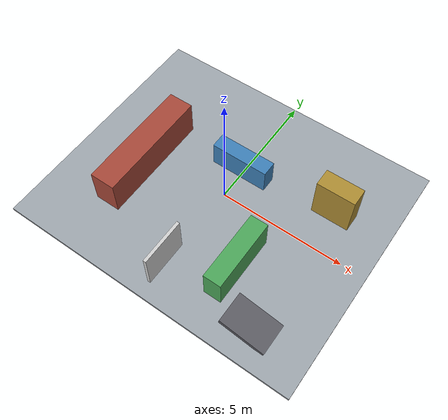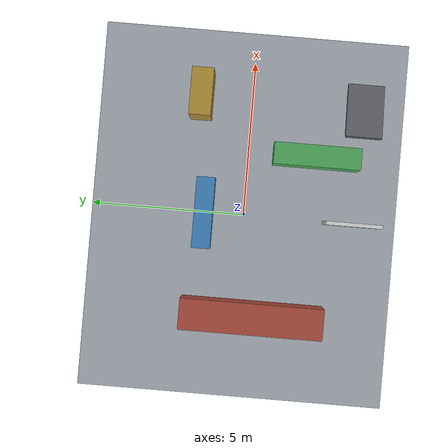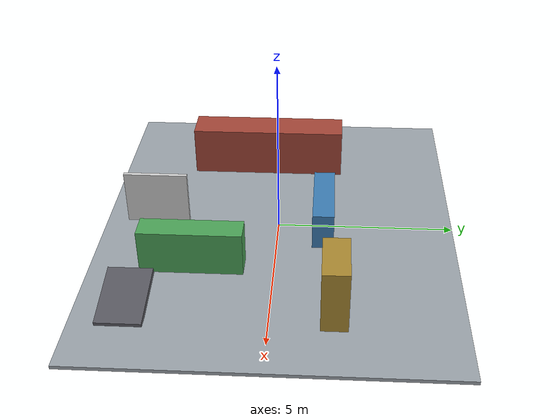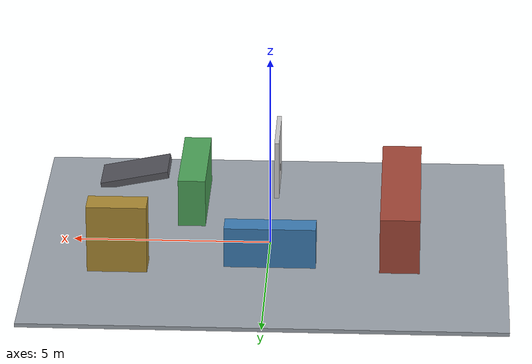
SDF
<?xml version="1.0"?>
<sdf version="1.6">
  <world name="nav_world">
    <gravity>0 0 -9.81</gravity>
    <physics type="ode">
      <max_step_size>0.004</max_step_size>
      <real_time_update_rate>250</real_time_update_rate>
      <real_time_factor>1.0</real_time_factor>
      <ode><solver><type>quick</type><iters>20</iters><sor>1.3</sor></solver></ode>
    </physics>
    <scene><ambient>0.65 0.65 0.65 1</ambient><background>0.78 0.82 0.88 1</background><shadows>false</shadows></scene>
    <light name="sun" type="directional">
      <cast_shadows>false</cast_shadows><pose>0 0 10 0 0 0</pose>
      <diffuse>0.9 0.9 0.9 1</diffuse><direction>-0.4 0.2 -1</direction>
    </light>
    <model name="ground"><static>true</static>
      <link name="link"><collision name="collision"><geometry><box><size>12 10 0.1</size></box></geometry></collision>
      <visual name="visual"><geometry><box><size>12 10 0.1</size></box></geometry>
        <material><ambient>0.52 0.55 0.58 1</ambient><diffuse>0.62 0.65 0.68 1</diffuse></material></visual></link>
    </model>

    <model name="west_block"><static>true</static><pose>-3.3 -0.5 0.75 0 0 0</pose>
      <link name="link"><collision name="c"><geometry><box><size>1.0 4.6 1.5</size></box></geometry></collision>
      <visual name="v"><geometry><box><size>1.0 4.6 1.5</size></box></geometry><material><ambient>0.65 0.28 0.22 1</ambient></material></visual></link></model>
    <model name="center_block"><static>true</static><pose>-0.05 1.3 0.55 0 0 0</pose>
      <link name="link"><collision name="c"><geometry><box><size>2.3 0.6 1.1</size></box></geometry></collision>
      <visual name="v"><geometry><box><size>2.3 0.6 1.1</size></box></geometry><material><ambient>0.24 0.50 0.72 1</ambient></material></visual></link></model>
    <model name="east_block"><static>true</static><pose>2.05 -2.2 0.65 0 0 0</pose>
      <link name="link"><collision name="c"><geometry><box><size>0.7 2.8 1.3</size></box></geometry></collision>
      <visual name="v"><geometry><box><size>0.7 2.8 1.3</size></box></geometry><material><ambient>0.30 0.65 0.35 1</ambient></material></visual></link></model>
    <model name="north_block"><static>true</static><pose>3.75 1.65 0.9 0 0 0</pose>
      <link name="link"><collision name="c"><geometry><box><size>1.5 0.7 1.8</size></box></geometry></collision>
      <visual name="v"><geometry><box><size>1.5 0.7 1.8</size></box></geometry><material><ambient>0.68 0.55 0.20 1</ambient></material></visual></link></model>
    <!-- The west face is visible from the robot's initial pose (-4.5, -3.5). -->
    <model name="apriltag_wall"><static>true</static><pose>-0.05 -3.5 0.8 0 0 0</pose>
      <link name="link">
        <collision name="wall_collision"><geometry><box><size>0.12 1.8 1.6</size></box></geometry></collision>
        <visual name="wall_visual"><geometry><box><size>0.12 1.8 1.6</size></box></geometry>
          <material><ambient>0.72 0.72 0.72 1</ambient><diffuse>0.82 0.82 0.82 1</diffuse></material></visual>
        <visual name="apriltag_visual"><pose>-0.061 0 -0.25 0 -1.570796 0</pose>
          <geometry><plane><normal>0 0 1</normal><size>0.204 0.204</size></plane></geometry>
          <material><script><uri>file://media/materials/scripts</uri><uri>file://media/materials/textures</uri>
            <name>Go2WSim/AprilTagWall</name></script></material>
        </visual>
      </link>
    </model>

    <model name="visual_ramp"><static>true</static><pose>3.7 -3.7 0.25 0 0.20 0</pose>
      <link name="link"><visual name="v"><geometry><box><size>1.8 1.2 0.18</size></box></geometry>
        <material><ambient>0.35 0.35 0.38 1</ambient></material></visual></link></model>
  </world>
</sdf>
